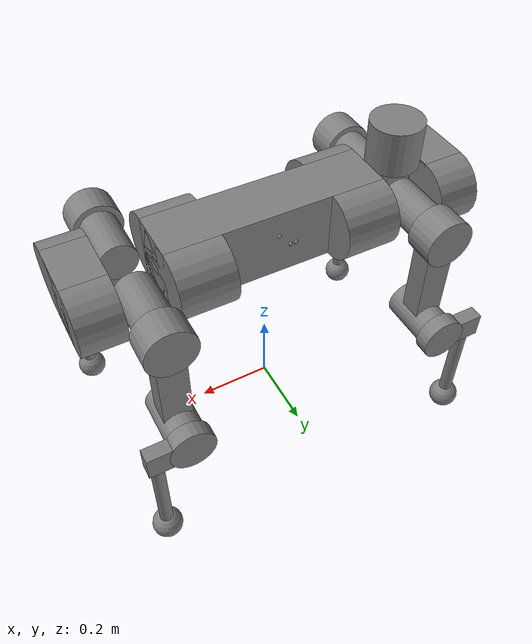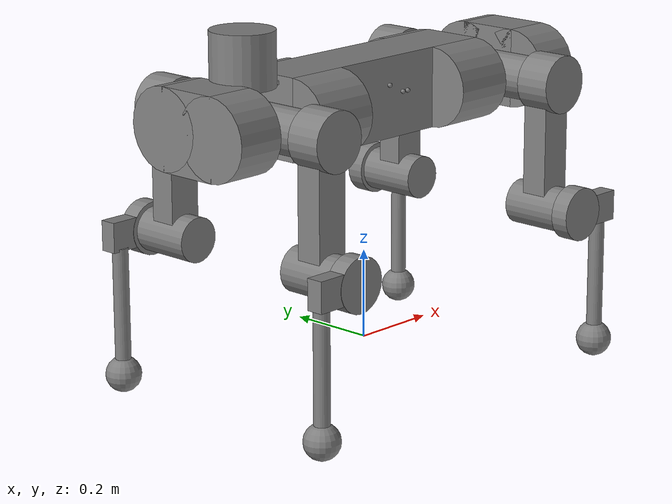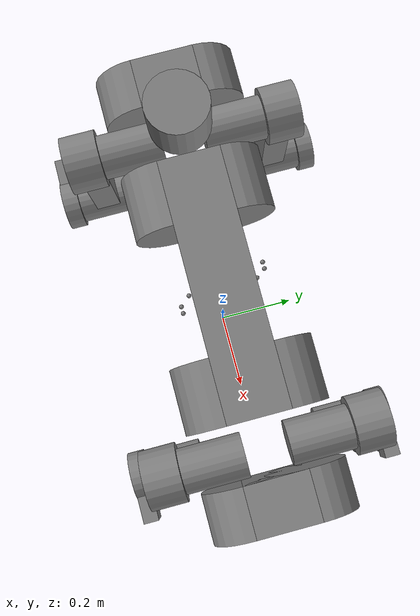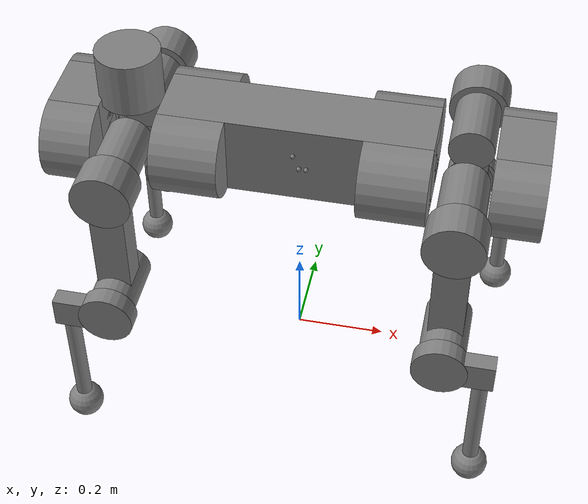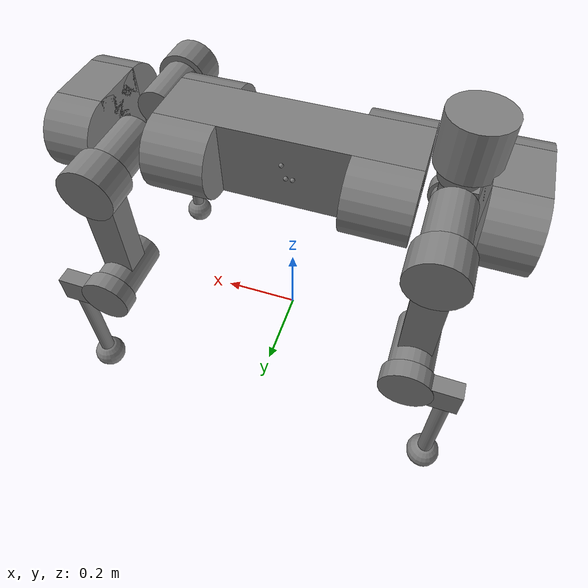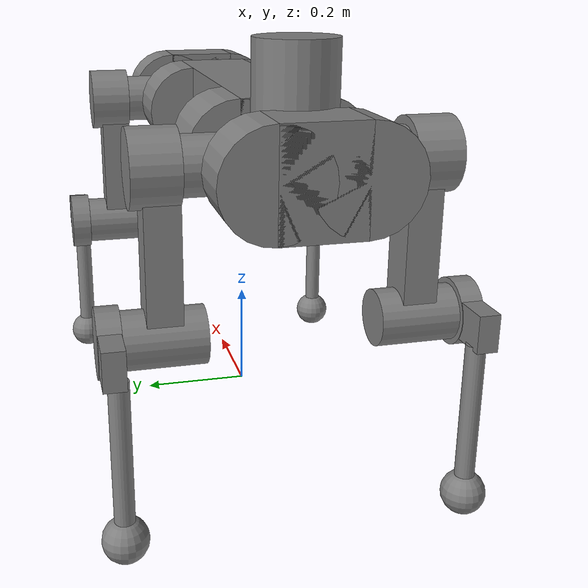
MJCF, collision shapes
<mujoco model="anymal_c">
  <compiler angle="radian" meshdir="assets" texturedir="assets" autolimits="true" />

  <option cone="elliptic" impratio="100" />

  <default>
    <material specular="0" shininess="0.25"/>
    <default class="anymal_c">
      <geom friction="0.4" margin="0.001" condim="1"/>
      <joint damping="0.1" armature="0.01" frictionloss="0.2"/>
      <motor ctrlrange="-80 80"/>
      <default class="visual">
        <geom type="mesh" contype="0" conaffinity="0" group="2"/>
        <default class="visual_zflip">
          <geom quat="0 0 0 1"/>
        </default>
      </default>
      <default class="collision">
        <geom group="3" type="cylinder"/>
        <default class="foot">
          <geom type="sphere" size="0.03" pos="0 0 0.02325" priority="1" condim="6"
            friction="1.0 0.02 0.01"/>
        </default>
      </default>
    </default>
  </default>

  <asset>
    <material name="black_plastic" rgba="0.007 0.007 0.007 1"/>
    <material name="green" rgba="0.052 0.178 0.033 1"/>
    <material name="red" rgba="0.178 0.006 0.005 1"/>
    <material name="yellow" rgba="0.178 0.119 0.006 1"/>
    <material name="lwl" rgba="0.8 0.8 0.8 1"/>
    <material name="base" texture="base"/>
    <material name="top_shell" texture="top_shell"/>
    <material name="bottom_shell" texture="bottom_shell"/>
    <material name="hip_l" texture="hip_l"/>
    <material name="thigh" texture="thigh"/>
    <material name="shank_l" texture="shank_l"/>
    <material name="foot" texture="foot"/>
    <material name="hip_r" texture="hip_r"/>
    <material name="shank" texture="shank_r"/>
    <material name="hatch" texture="hatch"/>
    <material name="remote" texture="remote"/>
    <material name="handle" texture="handle"/>
    <material name="face" texture="face"/>
    <material name="depth_camera" texture="depth_camera"/>
    <material name="wide_angle_camera" texture="wide_angle_camera"/>
    <material name="battery" texture="battery"/>
    <material name="lidar_cage" texture="lidar_cage"/>
    <material name="lidar" texture="lidar"/>
    <material name="drive" texture="drive"/>

    <texture type="2d" name="base" file="base.png"/>
    <texture type="2d" name="top_shell" file="top_shell.png"/>
    <texture type="2d" name="bottom_shell" file="bottom_shell.png"/>
    <texture type="2d" name="remote" file="remote.png"/>
    <texture type="2d" name="hatch" file="hatch.png"/>
    <texture type="2d" name="handle" file="handle.png"/>
    <texture type="2d" name="face" file="face.png"/>
    <texture type="2d" name="battery" file="battery.png"/>
    <texture type="2d" name="lidar_cage" file="lidar_cage.png"/>
    <texture type="2d" name="depth_camera" file="depth_camera.png"/>
    <texture type="2d" name="wide_angle_camera" file="wide_angle_camera.png"/>
    <texture type="2d" name="lidar" file="lidar.png"/>
    <texture type="2d" name="drive" file="drive.png"/>
    <texture type="2d" name="hip_l" file="hip_l.png"/>
    <texture type="2d" name="shank_l" file="shank_l.png"/>
    <texture type="2d" name="foot" file="foot.png"/>
    <texture type="2d" name="thigh" file="thigh.png"/>
    <texture type="2d" name="shank_r" file="shank_r.png"/>
    <texture type="2d" name="hip_r" file="hip_r.png"/>

    <mesh file="base_0.obj"/>
    <mesh file="base_1.obj"/>
    <mesh file="base_2.obj"/>
    <mesh file="base_3.obj"/>
    <mesh file="base_4.obj"/>
    <mesh file="base_5.obj"/>
    <mesh file="top_shell.obj"/>
    <mesh file="bottom_shell.obj"/>
    <mesh file="remote.obj"/>
    <mesh file="handle.obj"/>
    <mesh file="face.obj"/>
    <mesh file="wide_angle_camera.obj"/>
    <mesh file="depth_camera.obj"/>
    <mesh file="battery.obj"/>
    <mesh file="lidar_cage.obj"/>
    <mesh file="lidar.obj"/>
    <mesh file="drive.obj"/>
    <mesh file="hip_l.obj"/>
    <mesh file="thigh.obj"/>
    <mesh file="shank_l.obj"/>
    <mesh file="foot.obj"/>
    <mesh file="hip_r.obj"/>
    <mesh file="hatch.obj"/>
    <mesh file="shank_r.obj"/>
  </asset>

  <worldbody>
    <body name="base" pos="0 0 0.555" childclass="anymal_c">
      <freejoint/>
      <inertial mass="19.2035" pos="0.0025 0 0.0502071" quat="0.5 0.5 0.5 0.5" diaginertia="0.639559 0.624031 0.217374"/>
      <geom mesh="base_0" material="green" class="visual"/>
      <geom mesh="base_1" material="yellow" class="visual"/>
      <geom mesh="base_2" material="red" class="visual"/>
      <geom mesh="base_3" material="black_plastic" class="visual"/>
      <geom mesh="base_4" material="lwl" class="visual"/>
      <geom mesh="base_5" material="base" class="visual"/>
      <geom class="collision" size="0.29 0.07 0.09" type="box"/>
      <geom class="collision" size="0.09 0.0725" pos="0.2175 0.07 0" quat="1 0 1 0"/>
      <geom class="collision" size="0.09 0.0725" pos="-0.2175 0.07 0" quat="1 0 1 0"/>
      <geom class="collision" size="0.09 0.0725" pos="0.2175 -0.07 0" quat="1 0 1 0"/>
      <geom class="collision" size="0.09 0.0725" pos="-0.2175 -0.07 0" quat="1 0 1 0"/>
      <geom material="top_shell" mesh="top_shell" class="visual"/>
      <geom material="bottom_shell" mesh="bottom_shell" class="visual"/>
      <geom material="remote" mesh="remote" class="visual"/>
      <geom material="handle" mesh="handle" class="visual"/>
      <geom pos="0.4145 0 0" material="face" mesh="face" class="visual"/>
      <geom class="collision" size="0.055 0.07 0.09" pos="0.4695 0 0" type="box"/>
      <geom class="collision" size="0.09 0.055" pos="0.4695 0.07 0" quat="1 0 1 0"/>
      <geom class="collision" size="0.09 0.055" pos="0.4695 -0.07 0" quat="1 0 1 0"/>
      <geom pos="0.46165 0 -0.0292" quat="0.965926 0 0.258819 0" material="depth_camera" mesh="depth_camera"
        class="visual"/>
      <geom pos="0.513 0 0.01497" material="wide_angle_camera" mesh="wide_angle_camera" class="visual"/>
      <geom pos="-0.4145 0 0" material="face" mesh="face" class="visual_zflip"/>
      <geom class="collision" size="0.055 0.07 0.09" pos="-0.4695 0 0" quat="0 0 0 1" type="box"/>
      <geom class="collision" size="0.09 0.055" pos="-0.4695 -0.07 0" quat="0 -1 0 1"/>
      <geom class="collision" size="0.09 0.055" pos="-0.4695 0.07 0" quat="0 -1 0 1"/>
      <geom pos="-0.46165 0 -0.0292" quat="0 -0.258819 0 0.965926" material="depth_camera" mesh="depth_camera"
        class="visual"/>
      <geom pos="-0.513 0 0.01497" material="wide_angle_camera" mesh="wide_angle_camera" class="visual_zflip"/>
      <geom material="battery" mesh="battery" class="visual"/>
      <geom pos="0 0.07646 0.02905" quat="0.683013 -0.183013 0.183013 0.683013" material="depth_camera"
        mesh="depth_camera" class="visual"/>
      <geom pos="0 -0.07646 0.02905" quat="0.683013 0.183013 0.183013 -0.683013" material="depth_camera"
        mesh="depth_camera" class="visual"/>
      <geom pos="-0.364 0 0.0735" material="lidar_cage" mesh="lidar_cage" class="visual"/>
      <geom class="collision" size="0.07 0.06" pos="-0.364 0 0.1335"/>
      <geom pos="-0.364 0 0.1422" quat="1 0 0 -1" material="lidar" mesh="lidar" class="visual"/>
      <geom pos="0.2999 0.104 0" quat="0.258819 0.965926 0 0" material="drive" mesh="drive" class="visual"/>
      <geom pos="0.2999 -0.104 0" quat="0.258819 -0.965926 0 0" material="drive" mesh="drive" class="visual"/>
      <geom pos="-0.2999 0.104 0" quat="0 0 0.965926 -0.258819" material="drive" mesh="drive" class="visual"/>
      <geom pos="-0.2999 -0.104 0" quat="0 0 -0.965926 -0.258819" material="drive" mesh="drive" class="visual"/>
      <geom pos="0.116 0 0.073" material="hatch" mesh="hatch" class="visual"/>
      <site name="imu" pos="0 0 0" />
      <!-- Camera frames -->
      <site name="depth_camera_front_camera" pos="0.461650 0 -0.029200" quat="0.965926 0 0.258819 0"/>
      <site name="depth_camera_front_depth_optical_frame" pos="0.483734 0.017500 -0.041950" quat="0.353553 -0.612372 0.612372 -0.353553"/>
      <site name="depth_camera_front_color_optical_frame" pos="0.483734 0.032500 -0.041950" quat="0.353553 -0.612372 0.612372 -0.353553"/>
      <site name="depth_camera_rear_camera" pos="-0.461650 0 -0.029200" quat="0 0.258819 0 -0.965926"/>
      <site name="depth_camera_rear_depth_optical_frame" pos="-0.483734 -0.017500 -0.041950" quat="0.353553 -0.612372 -0.612372 0.353553"/>
      <site name="depth_camera_rear_color_optical_frame" pos="-0.483734 -0.032500 -0.041950" quat="0.353553 -0.612372 -0.612372 0.353553"/>
      <site name="depth_camera_left_camera" pos="0 0.076460 0.029050" quat="0.683013 -0.183013 0.183013 0.683013"/>
      <site name="depth_camera_left_depth_optical_frame" pos="-0.017500 0.098544 0.016300" quat="0.5 -0.866025 0 0"/>
      <site name="depth_camera_left_color_optical_frame" pos="-0.032500 0.098544 0.016300" quat="0.5 -0.866025 0 0"/>
      <site name="depth_camera_right_camera" pos="0 -0.076460 0.029050" quat="0.683013 0.183013 0.183013 -0.683013"/>
      <site name="depth_camera_right_depth_optical_frame" pos="0.017500 -0.098544 0.016300" quat="0 0 0.866025 -0.5"/>
      <site name="depth_camera_right_color_optical_frame" pos="0.032500 -0.098544 0.016300" quat="0 0 0.866025 -0.5"/>
      <site name="wide_angle_camera_front_camera" pos="0.513 0 0.014970"/>
      <site name="wide_angle_camera_front_optical" pos="0.513 0 0.014970" quat="0.5 -0.5 0.5 -0.5"/>
      <site name="wide_angle_camera_rear_camera" pos="-0.513 0 0.014970" quat="0 0 0 -1"/>
      <site name="wide_angle_camera_rear_optical" pos="-0.513 0 0.014970" quat="0.5 -0.5 -0.5 0.5"/>
      <body name="LF_HIP" pos="0.2999 0.104 0" quat="0.258819 0.965926 0 0">
        <inertial mass="2.781" pos="0.0566606 -0.015294 -0.00829784" quat="-0.127978 0.709783 -0.135278 0.679359"
          diaginertia="0.00585729 0.00491868 0.00329081"/>
        <joint name="LF_HAA" axis="1 0 0" range="-0.72 0.49"/>
        <geom quat="0.258819 -0.965926 0 0" material="hip_l" mesh="hip_l" class="visual"/>
        <geom pos="0.0599 -0.0725816 -0.041905" quat="0.183013 -0.683013 0.683013 0.183013" material="drive"
          mesh="drive" class="visual"/>
        <geom class="collision" size="0.05 0.07" pos="0.0599 -0.0119598 -0.006905"
          quat="-0.353553 -0.612372 0.612372 -0.353553"/>
        <body name="LF_THIGH" pos="0.0599 -0.0725816 -0.041905" quat="0.183013 -0.683013 0.683013 0.183013">
          <inertial mass="3.071" pos="0.0308147 4.64995e-05 -0.245696" quat="0.993166 -0.00515309 -0.0806592 0.0841972"
            diaginertia="0.03025 0.0298943 0.00418465"/>
          <joint name="LF_HFE" axis="1 0 0" range="-9.42478 9.42478"/>
          <geom quat="1 0 0 -1" material="thigh" mesh="thigh" class="visual"/>
          <geom class="collision" size="0.065 0.04" pos="0.04 0 0" quat="0.5 0.5 -0.5 -0.5"/>
          <geom class="collision" size="0.0375 0.03 0.141314" pos="0.03 0 -0.141314" quat="1 0 0 -1" type="box"/>
          <geom pos="0.1003 0 -0.285" material="drive" mesh="drive" class="visual"/>
          <geom class="collision" size="0.05 0.07" pos="0.0303 0 -0.285" quat="1 0 1 0"/>
          <body name="LF_SHANK" pos="0.1003 0 -0.285">
            <inertial mass="0.58842" pos="0.005462 -0.0612528 -0.0806598"
              quat="0.992934 -0.115904 -0.00105487 -0.0254421" diaginertia="0.0101637 0.00923838 0.00111927"/>
            <joint name="LF_KFE" axis="1 0 0" range="-9.42478 9.42478"/>
            <geom quat="1 0 0 -1" material="shank_l" mesh="shank_l" class="visual"/>
            <geom class="collision" size="0.06 0.02" pos="0.02 0 0" quat="0.5 0.5 -0.5 -0.5"/>
            <geom class="collision" size="0.057499 0.03375 0.019" pos="0.02 -0.057499 0" quat="0.5 0.5 -0.5 -0.5"
              type="box"/>
            <geom pos="0.01305 -0.08795 -0.33797" quat="0.382683 0 0 -0.92388" material="foot" mesh="foot"
              class="visual"/>
            <geom class="collision" size="0.0175 0.141252" pos="0.01305 -0.08795 -0.168985" quat="1 0 0 -1"/>
            <geom name="LF" class="foot" pos="0.01305 -0.08795 -0.31547"/>
            <site name="LF_foot_site" pos="0.01305 -0.08795 -0.31547" size="0.04" />
          </body>
        </body>
      </body>
      <body name="RF_HIP" pos="0.2999 -0.104 0" quat="0.258819 -0.965926 0 0">
        <inertial mass="2.781" pos="0.0567633 0.015294 -0.00829784" quat="0.13524 0.679072 0.127985 0.710065"
          diaginertia="0.00585928 0.0049205 0.00329064"/>
        <joint name="RF_HAA" axis="1 0 0" range="-0.49 0.72"/>
        <geom quat="0.258819 0.965926 0 0" material="hip_r" mesh="hip_r" class="visual"/>
        <geom pos="0.0599 0.0725816 -0.041905" quat="0.183013 0.683013 0.683013 -0.183013" material="drive" mesh="drive"
          class="visual"/>
        <geom class="collision" size="0.05 0.07" pos="0.0599 0.0119598 -0.006905"
          quat="-0.353553 0.612372 0.612372 0.353553"/>
        <body name="RF_THIGH" pos="0.0599 0.0725816 -0.041905" quat="0.183013 0.683013 0.683013 -0.183013">
          <inertial mass="3.071" pos="0.0308147 4.64995e-05 -0.245696" quat="0.992775 -0.00512735 -0.0806685 0.0886811"
            diaginertia="0.0302511 0.0298933 0.0041845"/>
          <joint name="RF_HFE" axis="-1 0 0" range="-9.42478 9.42478"/>
          <geom quat="1 0 0 -1" material="thigh" mesh="thigh" class="visual"/>
          <geom class="collision" size="0.065 0.04" pos="0.04 0 0" quat="0.5 0.5 0.5 0.5"/>
          <geom class="collision" size="0.0375 0.03 0.141314" pos="0.03 0 -0.141314" quat="1 0 0 1" type="box"/>
          <geom pos="0.1003 0 -0.285" material="drive" mesh="drive" class="visual"/>
          <geom class="collision" size="0.05 0.07" pos="0.0303 0 -0.285" quat="1 0 1 0"/>
          <body name="RF_SHANK" pos="0.1003 0 -0.285">
            <inertial mass="0.58842" pos="0.005462 0.0612528 -0.0806598" quat="0.992934 0.115904 -0.00105487 0.0254421"
              diaginertia="0.0101637 0.00923838 0.00111927"/>
            <joint name="RF_KFE" axis="-1 0 0" range="-9.42478 9.42478"/>
            <geom quat="1 0 0 1" material="shank" mesh="shank_r" class="visual"/>
            <geom class="collision" size="0.06 0.02" pos="0.02 0 0" quat="0.5 0.5 0.5 0.5"/>
            <geom class="collision" size="0.057499 0.03375 0.019" pos="0.02 0.057499 0" quat="0.5 0.5 0.5 0.5"
              type="box"/>
            <geom pos="0.01305 0.08795 -0.33797" quat="0.382683 0 0 0.92388" material="foot" mesh="foot" class="visual"/>
            <geom class="collision" size="0.0175 0.141252" pos="0.01305 0.08795 -0.168985" quat="1 0 0 1"/>
            <geom name="RF" class="foot" pos="0.01305 0.08795 -0.31547"/>
            <site name="RF_foot_site" pos="0.01305 0.08795 -0.31547" size="0.04" />
          </body>
        </body>
      </body>
      <body name="LH_HIP" pos="-0.2999 0.104 0" quat="0 0 0.965926 -0.258819">
        <inertial mass="2.781" pos="0.0567633 0.015294 -0.00829784" quat="0.13524 0.679072 0.127985 0.710065"
          diaginertia="0.00585928 0.0049205 0.00329064"/>
        <joint name="LH_HAA" axis="-1 0 0" range="-0.72 0.49"/>
        <geom quat="-0.258819 -0.965926 0 0" material="hip_r" mesh="hip_r" class="visual"/>
        <geom pos="0.0599 0.0725816 -0.041905" quat="0.183013 0.683013 0.683013 -0.183013" material="drive" mesh="drive"
          class="visual"/>
        <geom class="collision" size="0.05 0.07" pos="0.0599 0.0119598 -0.006905"
          quat="-0.353553 0.612372 0.612372 0.353553"/>
        <body name="LH_THIGH" pos="0.0599 0.0725816 -0.041905" quat="0.183013 0.683013 0.683013 -0.183013">
          <inertial mass="3.071" pos="0.0308147 4.64995e-05 -0.245696" quat="0.992775 -0.00512735 -0.0806685 0.0886811"
            diaginertia="0.0302511 0.0298933 0.0041845"/>
          <joint name="LH_HFE" axis="1 0 0" range="-9.42478 9.42478"/>
          <geom quat="1 0 0 -1" material="thigh" mesh="thigh" class="visual"/>
          <geom class="collision" size="0.065 0.04" pos="0.04 0 0" quat="0.5 0.5 -0.5 -0.5"/>
          <geom class="collision" size="0.0375 0.03 0.141314" pos="0.03 0 -0.141314" quat="1 0 0 -1" type="box"/>
          <geom pos="0.1003 0 -0.285" material="drive" mesh="drive" class="visual"/>
          <geom class="collision" size="0.05 0.07" pos="0.0303 0 -0.285" quat="1 0 1 0"/>
          <body name="LH_SHANK" pos="0.1003 0 -0.285">
            <inertial mass="0.58842" pos="0.005462 0.0612528 -0.0806598" quat="0.992934 0.115904 -0.00105487 0.0254421"
              diaginertia="0.0101637 0.00923838 0.00111927"/>
            <joint name="LH_KFE" axis="1 0 0" range="-9.42478 9.42478"/>
            <geom quat="-1 0 0 -1" material="shank" mesh="shank_r" class="visual"/>
            <geom class="collision" size="0.06 0.02" pos="0.02 0 0" quat="0.5 0.5 -0.5 -0.5"/>
            <geom class="collision" size="0.057499 0.03375 0.019" pos="0.02 0.057499 0" quat="0.5 0.5 -0.5 -0.5"
              type="box"/>
            <geom pos="0.01305 0.08795 -0.33797" quat="-0.382683 0 0 -0.92388" material="foot" mesh="foot"
              class="visual"/>
            <geom class="collision" size="0.0175 0.141252" pos="0.01305 0.08795 -0.168985" quat="1 0 0 -1"/>
            <geom name="LH" class="foot" pos="0.01305 0.08795 -0.31547"/>
            <site name="LH_foot_site" pos="0.01305 0.08795 -0.31547" size="0.04" />
          </body>
        </body>
      </body>
      <body name="RH_HIP" pos="-0.2999 -0.104 0" quat="0 0 -0.965926 -0.258819">
        <inertial mass="2.781" pos="0.0566606 -0.015294 -0.00829784" quat="-0.127978 0.709783 -0.135278 0.679359"
          diaginertia="0.00585729 0.00491868 0.00329081"/>
        <joint name="RH_HAA" axis="-1 0 0" range="-0.49 0.72"/>
        <geom quat="-0.258819 0.965926 0 0" material="hip_l" mesh="hip_l" class="visual"/>
        <geom pos="0.0599 -0.0725816 -0.041905" quat="-0.183013 0.683013 -0.683013 -0.183013" material="drive"
          mesh="drive" class="visual"/>
        <geom class="collision" size="0.05 0.07" pos="0.0599 -0.0119598 -0.006905"
          quat="0.353553 0.612372 -0.612372 0.353553"/>
        <body name="RH_THIGH" pos="0.0599 -0.0725816 -0.041905" quat="-0.183013 0.683013 -0.683013 -0.183013">
          <inertial mass="3.071" pos="0.0308147 4.64995e-05 -0.245696" quat="0.993166 -0.00515309 -0.0806592 0.0841972"
            diaginertia="0.03025 0.0298943 0.00418465"/>
          <joint name="RH_HFE" axis="-1 0 0" range="-9.42478 9.42478"/>
          <geom quat="1 0 0 -1" material="thigh" mesh="thigh" class="visual"/>
          <geom class="collision" size="0.065 0.04" pos="0.04 0 0" quat="0.5 0.5 0.5 0.5"/>
          <geom class="collision" size="0.0375 0.03 0.141314" pos="0.03 0 -0.141314" quat="1 0 0 1" type="box"/>
          <geom pos="0.1003 0 -0.285" material="drive" mesh="drive" class="visual"/>
          <geom class="collision" size="0.05 0.07" pos="0.0303 0 -0.285" quat="1 0 1 0"/>
          <body name="RH_SHANK" pos="0.1003 0 -0.285">
            <inertial mass="0.58842" pos="0.005462 -0.0612528 -0.0806598"
              quat="0.992934 -0.115904 -0.00105487 -0.0254421" diaginertia="0.0101637 0.00923838 0.00111927"/>
            <joint name="RH_KFE" axis="-1 0 0" range="-9.42478 9.42478"/>
            <geom quat="1 0 0 -1" material="shank_l" mesh="shank_l" class="visual"/>
            <geom class="collision" size="0.06 0.02" pos="0.02 0 0" quat="0.5 0.5 0.5 0.5"/>
            <geom class="collision" size="0.057499 0.03375 0.019" pos="0.02 -0.057499 0" quat="0.5 0.5 0.5 0.5"
              type="box"/>
            <geom pos="0.01305 -0.08795 -0.33797" quat="0.382683 0 0 -0.92388" material="foot" mesh="foot"
              class="visual"/>
            <geom class="collision" size="0.0175 0.141252" pos="0.01305 -0.08795 -0.168985" quat="1 0 0 1"/>
            <geom name="RH" class="foot" pos="0.01305 -0.08795 -0.31547"/>
            <site name="RH_foot_site" pos="0.01305 -0.08795 -0.31547" size="0.04" />
          </body>
        </body>
      </body>
    </body>
  </worldbody>

  <contact>
    <exclude body1="base" body2="LF_THIGH"/>
    <exclude body1="base" body2="RF_THIGH"/>
    <exclude body1="base" body2="LH_THIGH"/>
    <exclude body1="base" body2="RH_THIGH"/>
  </contact>

  <actuator>
    <motor class="anymal_c" name="LF_HAA" joint="LF_HAA" />
    <motor class="anymal_c" name="LF_HFE" joint="LF_HFE" />
    <motor class="anymal_c" name="LF_KFE" joint="LF_KFE" />
    <motor class="anymal_c" name="RF_HAA" joint="RF_HAA" />
    <motor class="anymal_c" name="RF_HFE" joint="RF_HFE" />
    <motor class="anymal_c" name="RF_KFE" joint="RF_KFE" />
    <motor class="anymal_c" name="LH_HAA" joint="LH_HAA" />
    <motor class="anymal_c" name="LH_HFE" joint="LH_HFE" />
    <motor class="anymal_c" name="LH_KFE" joint="LH_KFE" />
    <motor class="anymal_c" name="RH_HAA" joint="RH_HAA" />
    <motor class="anymal_c" name="RH_HFE" joint="RH_HFE" />
    <motor class="anymal_c" name="RH_KFE" joint="RH_KFE" />
  </actuator>

  <sensor>
    <jointpos name="LF_HAA_pos" joint="LF_HAA" />
    <jointpos name="LF_HFE_pos" joint="LF_HFE" />
    <jointpos name="LF_KFE_pos" joint="LF_KFE" />
    <jointpos name="RF_HAA_pos" joint="RF_HAA" />
    <jointpos name="RF_HFE_pos" joint="RF_HFE" />
    <jointpos name="RF_KFE_pos" joint="RF_KFE" />
    <jointpos name="LH_HAA_pos" joint="LH_HAA" />
    <jointpos name="LH_HFE_pos" joint="LH_HFE" />
    <jointpos name="LH_KFE_pos" joint="LH_KFE" />
    <jointpos name="RH_HAA_pos" joint="RH_HAA" />
    <jointpos name="RH_HFE_pos" joint="RH_HFE" />
    <jointpos name="RH_KFE_pos" joint="RH_KFE" />

    <jointvel name="LF_HAA_vel" joint="LF_HAA" />
    <jointvel name="LF_HFE_vel" joint="LF_HFE" />
    <jointvel name="LF_KFE_vel" joint="LF_KFE" />
    <jointvel name="RF_HAA_vel" joint="RF_HAA" />
    <jointvel name="RF_HFE_vel" joint="RF_HFE" />
    <jointvel name="RF_KFE_vel" joint="RF_KFE" />
    <jointvel name="LH_HAA_vel" joint="LH_HAA" />
    <jointvel name="LH_HFE_vel" joint="LH_HFE" />
    <jointvel name="LH_KFE_vel" joint="LH_KFE" />
    <jointvel name="RH_HAA_vel" joint="RH_HAA" />
    <jointvel name="RH_HFE_vel" joint="RH_HFE" />
    <jointvel name="RH_KFE_vel" joint="RH_KFE" />

    <jointactuatorfrc name="LF_HAA_torque" joint="LF_HAA" noise="0.01" />
    <jointactuatorfrc name="LF_HFE_torque" joint="LF_HFE" noise="0.01" />
    <jointactuatorfrc name="LF_KFE_torque" joint="LF_KFE" noise="0.01" />
    <jointactuatorfrc name="RF_HAA_torque" joint="RF_HAA" noise="0.01" />
    <jointactuatorfrc name="RF_HFE_torque" joint="RF_HFE" noise="0.01" />
    <jointactuatorfrc name="RF_KFE_torque" joint="RF_KFE" noise="0.01" />
    <jointactuatorfrc name="LH_HAA_torque" joint="LH_HAA" noise="0.01" />
    <jointactuatorfrc name="LH_HFE_torque" joint="LH_HFE" noise="0.01" />
    <jointactuatorfrc name="LH_KFE_torque" joint="LH_KFE" noise="0.01" />
    <jointactuatorfrc name="RH_HAA_torque" joint="RH_HAA" noise="0.01" />
    <jointactuatorfrc name="RH_HFE_torque" joint="RH_HFE" noise="0.01" />
    <jointactuatorfrc name="RH_KFE_torque" joint="RH_KFE" noise="0.01" />

    <framequat name="imu_quat" objtype="site" objname="imu" />
    <gyro name="imu_gyro" site="imu" />
    <accelerometer name="imu_acc" site="imu" />

    <framepos name="frame_pos" objtype="site" objname="imu" />
    <framelinvel name="frame_vel" objtype="site" objname="imu" />

    <touch name="FR_foot_force" site="RF_foot_site" />
    <touch name="FL_foot_force" site="LF_foot_site" />
    <touch name="RR_foot_force" site="RH_foot_site" />
    <touch name="RL_foot_force" site="LH_foot_site" />
  </sensor>

  <keyframe>
    <key name="stand" qpos="0 0 0.555 1 0 0 0 0.03 0.4 -0.8 -0.03 0.4 -0.8 -0.03 -0.4 0.8 0.03 -0.4 0.8"
      ctrl="0.03 0.4 -0.8 -0.03 0.4 -0.8 -0.03 -0.4 0.8 0.03 -0.4 0.8" />
    <key name="sit" qpos="0 0 0.30 1 0 0 0 0.03 0.8 -1.5 -0.03 0.8 -1.5 -0.03 -0.8 1.5 0.03 -0.8 1.5"
      ctrl="0.03 0.8 -1.5 -0.03 0.8 -1.5 -0.03 -0.8 1.5 0.03 -0.8 1.5" />
  </keyframe>
</mujoco>
